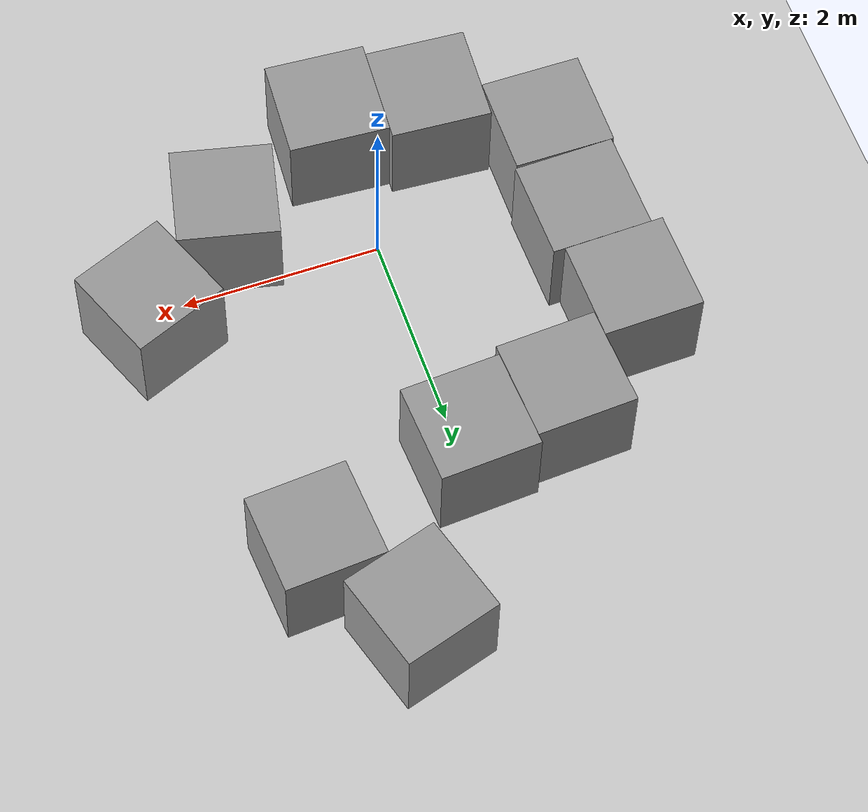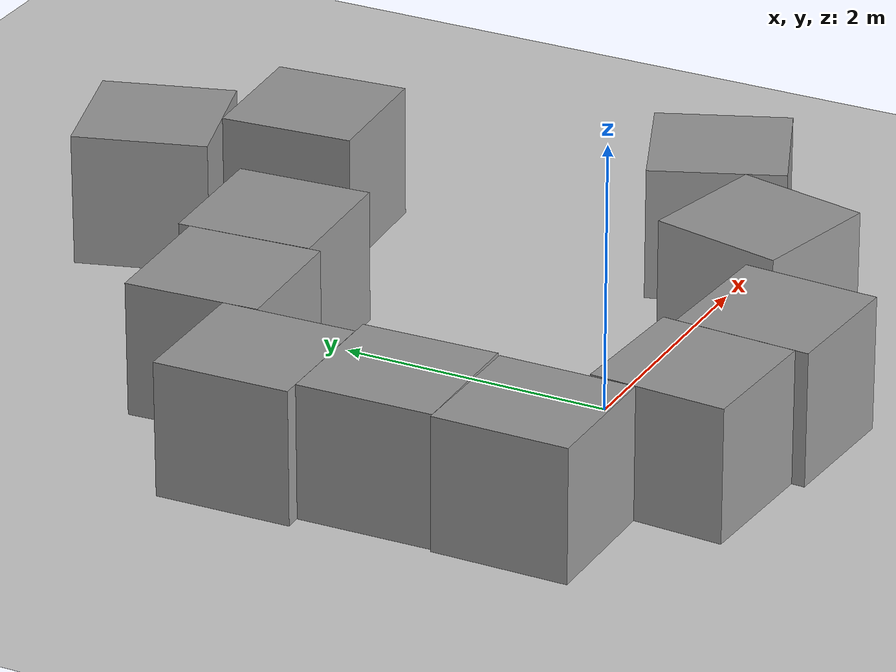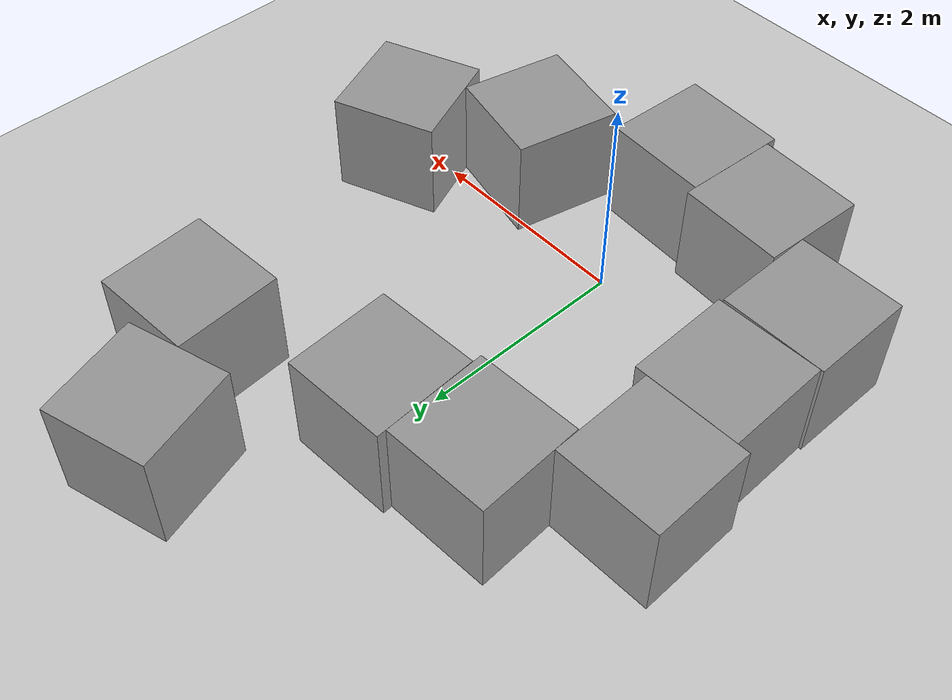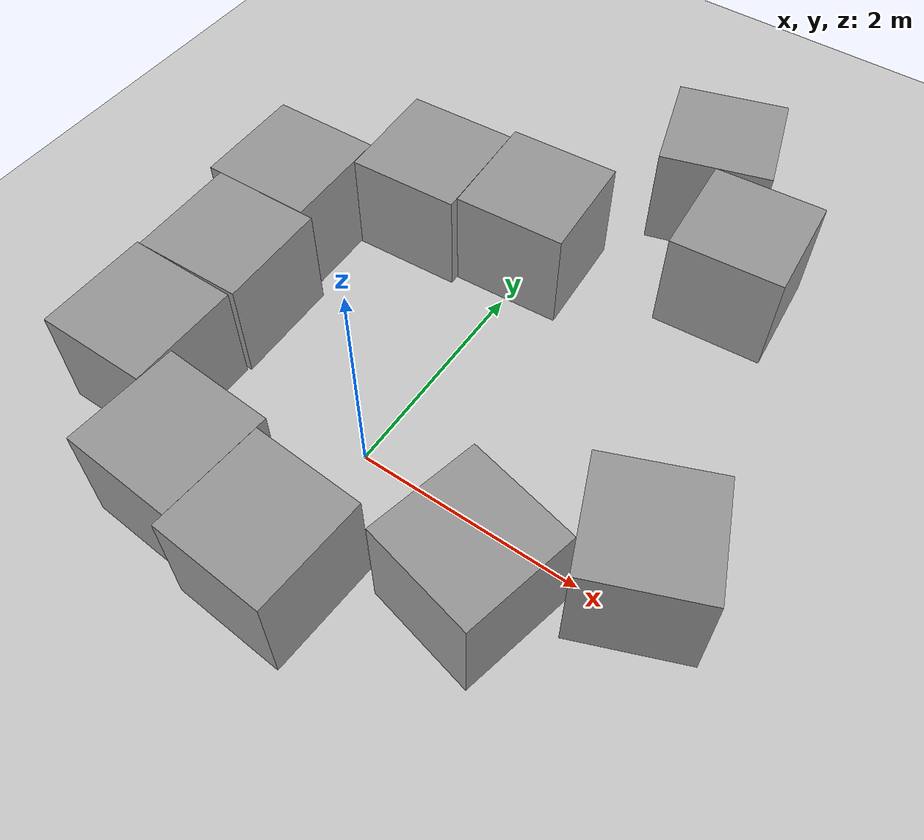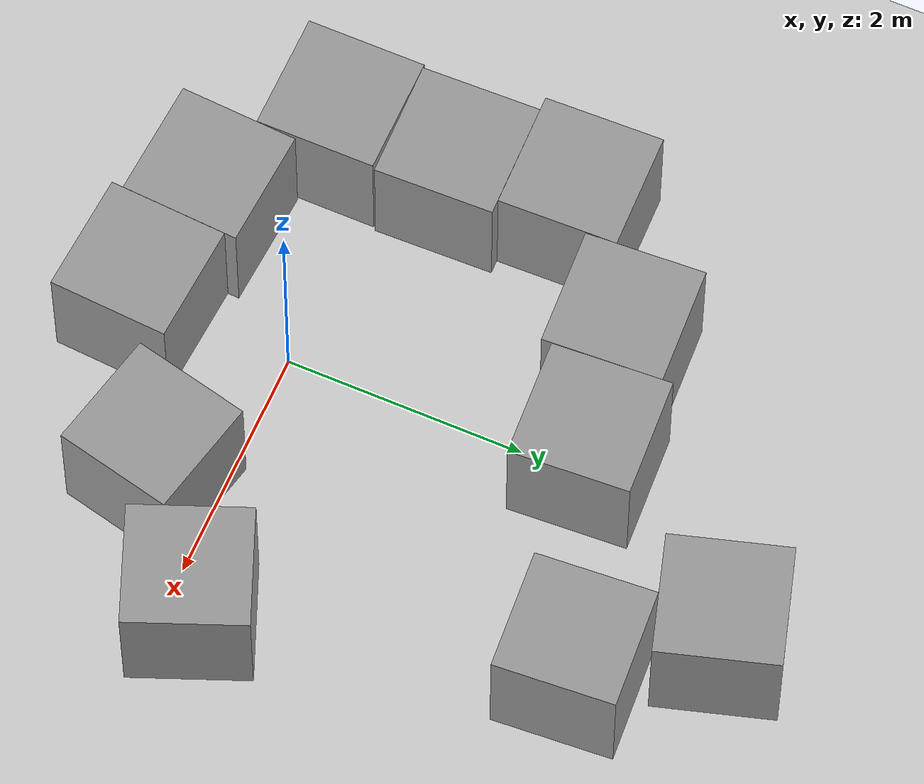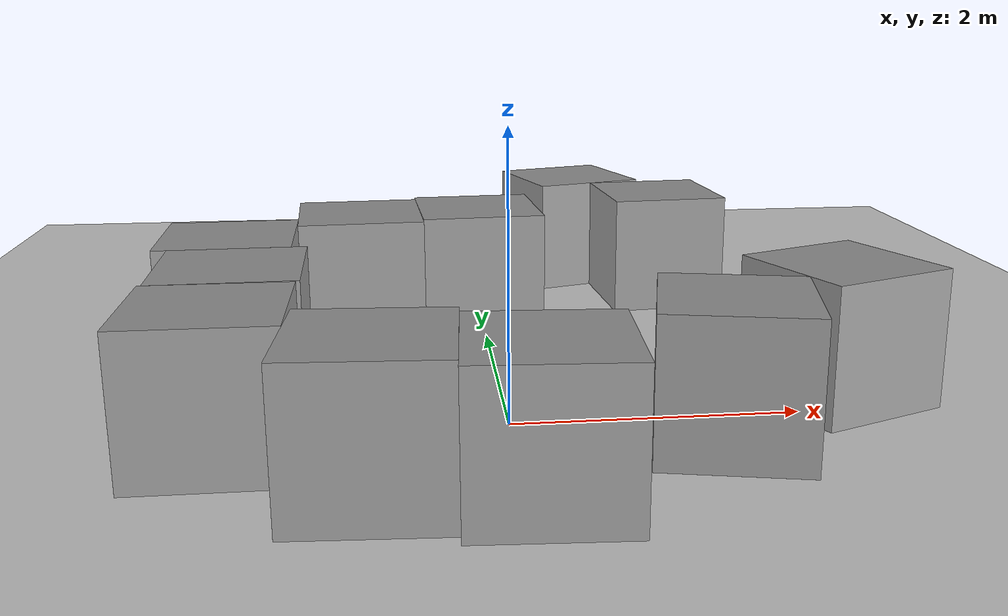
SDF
<sdf version="1.7">
 <world name="default">
  <light name="sun" type="directional">
   <pose>0 0 10 0 -0 0</pose>
   <diffuse>0.8 0.8 0.8 1</diffuse>
   <specular>0.2 0.2 0.2 1</specular>
   <attenuation>
    <range>1000</range>
    <constant>0.9</constant>
    <linear>0.01</linear>
    <quadratic>0.001</quadratic>
   </attenuation>
   <direction>-0.5 0.1 -0.9</direction>
  </light>
  <model name="ground_plane">
   <static>1</static>
   <link name="link">
    <collision name="collision">
     <geometry><plane><normal>0 0 1</normal><size>100 100</size></plane></geometry>
     <surface><friction><ode><mu>100</mu><mu2>50</mu2></ode></friction></surface>
    </collision>
    <visual name="visual">
     <cast_shadows>0</cast_shadows>
     <geometry><plane><normal>0 0 1</normal><size>100 100</size></plane></geometry>
     <material>
      <script><uri>file://media/materials/scripts/gazebo.material</uri><name>Gazebo/Grey</name></script>
     </material>
    </visual>
   </link>
  </model>
  <gravity>0 0 -20</gravity>
  <magnetic_field>6e-06 2.3e-05 -4.2e-05</magnetic_field>
  <atmosphere type="adiabatic"/>
  <physics type="ode">
   <max_step_size>0.001</max_step_size>
   <real_time_factor>1</real_time_factor>
   <real_time_update_rate>1000</real_time_update_rate>
  </physics>
  <scene><ambient>0.4 0.4 0.4 1</ambient><background>0.7 0.7 0.7 1</background><shadows>1</shadows></scene>
  <spherical_coordinates>
   <surface_model>EARTH_WGS84</surface_model>
   <latitude_deg>0</latitude_deg>
   <longitude_deg>0</longitude_deg>
   <elevation>0</elevation>
   <heading_deg>0</heading_deg>
  </spherical_coordinates>
  <model name="unit_box">
   <pose>2.364 0.240453 0.499991 -0 1.7e-05 0.383822</pose>
   <link name="link">
    <inertial>
     <mass>1</mass>
     <inertia>
      <ixx>0.166667</ixx>
      <ixy>0</ixy>
      <ixz>0</ixz>
      <iyy>0.166667</iyy>
      <iyz>0</iyz>
      <izz>0.166667</izz>
     </inertia>
    </inertial>
    <collision name="collision"><geometry><box><size>1 1 1</size></box></geometry></collision>
    <visual name="visual">
     <geometry><box><size>1 1 1</size></box></geometry>
     <material>
      <script><name>Gazebo/Grey</name><uri>file://media/materials/scripts/gazebo.material</uri></script>
     </material>
    </visual>
   </link>
  </model>
  <model name="unit_box_0">
   <pose>-0.885028 -1.0663 0.5 0 0 -0.060543</pose>
   <link name="link">
    <inertial>
     <mass>1</mass>
     <inertia>
      <ixx>0.166667</ixx>
      <ixy>0</ixy>
      <ixz>0</ixz>
      <iyy>0.166667</iyy>
      <iyz>0</iyz>
      <izz>0.166667</izz>
     </inertia>
    </inertial>
    <collision name="collision"><geometry><box><size>1 1 1</size></box></geometry></collision>
    <visual name="visual">
     <geometry><box><size>1 1 1</size></box></geometry>
     <material>
      <script><name>Gazebo/Grey</name><uri>file://media/materials/scripts/gazebo.material</uri></script>
     </material>
    </visual>
   </link>
  </model>
  <model name="unit_box_1">
   <pose>-1.87617 -0.378322 0.5 0 0 -0.002113</pose>
   <link name="link">
    <inertial>
     <mass>1</mass>
     <inertia>
      <ixx>0.166667</ixx>
      <ixy>0</ixy>
      <ixz>0</ixz>
      <iyy>0.166667</iyy>
      <iyz>0</iyz>
      <izz>0.166667</izz>
     </inertia>
    </inertial>
    <collision name="collision"><geometry><box><size>1 1 1</size></box></geometry></collision>
    <visual name="visual">
     <geometry><box><size>1 1 1</size></box></geometry>
     <material>
      <script><name>Gazebo/Grey</name><uri>file://media/materials/scripts/gazebo.material</uri></script>
     </material>
    </visual>
   </link>
  </model>
  <model name="unit_box_2">
   <pose>-1.86097 0.63409 0.5 0 -0 0.023085</pose>
   <link name="link">
    <inertial>
     <mass>1</mass>
     <inertia>
      <ixx>0.166667</ixx>
      <ixy>0</ixy>
      <ixz>0</ixz>
      <iyy>0.166667</iyy>
      <iyz>0</iyz>
      <izz>0.166667</izz>
     </inertia>
    </inertial>
    <collision name="collision"><geometry><box><size>1 1 1</size></box></geometry></collision>
    <visual name="visual">
     <geometry><box><size>1 1 1</size></box></geometry>
     <material>
      <script><name>Gazebo/Grey</name><uri>file://media/materials/scripts/gazebo.material</uri></script>
     </material>
    </visual>
   </link>
  </model>
  <model name="unit_box_3">
   <pose>0.107928 -1.22408 0.5 0 -0 -0.060858</pose>
   <link name="link">
    <inertial>
     <mass>1</mass>
     <inertia>
      <ixx>0.166667</ixx>
      <ixy>0</ixy>
      <ixz>0</ixz>
      <iyy>0.166667</iyy>
      <iyz>0</iyz>
      <izz>0.166667</izz>
     </inertia>
    </inertial>
    <collision name="collision"><geometry><box><size>1 1 1</size></box></geometry></collision>
    <visual name="visual">
     <geometry><box><size>1 1 1</size></box></geometry>
     <material>
      <script><name>Gazebo/Grey</name><uri>file://media/materials/scripts/gazebo.material</uri></script>
     </material>
    </visual>
   </link>
  </model>
  <model name="unit_box_4">
   <pose>1.37914 -0.514715 0.5 0 0 -0.223875</pose>
   <link name="link">
    <inertial>
     <mass>1</mass>
     <inertia>
      <ixx>0.166667</ixx>
      <ixy>0</ixy>
      <ixz>0</ixz>
      <iyy>0.166667</iyy>
      <iyz>0</iyz>
      <izz>0.166667</izz>
     </inertia>
    </inertial>
    <collision name="collision"><geometry><box><size>1 1 1</size></box></geometry></collision>
    <visual name="visual">
     <geometry><box><size>1 1 1</size></box></geometry>
     <material>
      <script><name>Gazebo/Grey</name><uri>file://media/materials/scripts/gazebo.material</uri></script>
     </material>
    </visual>
   </link>
  </model>
  <model name="unit_box_5">
   <pose>-0.030986 2.55487 0.499991 0 1.7e-05 0.059076</pose>
   <link name="link">
    <inertial>
     <mass>1</mass>
     <inertia>
      <ixx>0.166667</ixx>
      <ixy>0</ixy>
      <ixz>0</ixz>
      <iyy>0.166667</iyy>
      <iyz>0</iyz>
      <izz>0.166667</izz>
     </inertia>
    </inertial>
    <collision name="collision"><geometry><box><size>1 1 1</size></box></geometry></collision>
    <visual name="visual">
     <geometry><box><size>1 1 1</size></box></geometry>
     <material>
      <script><name>Gazebo/Grey</name><uri>file://media/materials/scripts/gazebo.material</uri></script>
     </material>
    </visual>
   </link>
  </model>
  <model name="unit_box_6">
   <pose>0.988436 4.09509 0.5 0 -0 0.292934</pose>
   <link name="link">
    <inertial>
     <mass>1</mass>
     <inertia>
      <ixx>0.166667</ixx>
      <ixy>0</ixy>
      <ixz>0</ixz>
      <iyy>0.166667</iyy>
      <iyz>0</iyz>
      <izz>0.166667</izz>
     </inertia>
    </inertial>
    <collision name="collision"><geometry><box><size>1 1 1</size></box></geometry></collision>
    <visual name="visual">
     <geometry><box><size>1 1 1</size></box></geometry>
     <material>
      <script><name>Gazebo/Grey</name><uri>file://media/materials/scripts/gazebo.material</uri></script>
     </material>
    </visual>
   </link>
  </model>
  <model name="unit_box_7">
   <pose>1.67002 3.1535 0.5 0 -0 0.071052</pose>
   <link name="link">
    <inertial>
     <mass>1</mass>
     <inertia>
      <ixx>0.166667</ixx>
      <ixy>0</ixy>
      <ixz>0</ixz>
      <iyy>0.166667</iyy>
      <iyz>0</iyz>
      <izz>0.166667</izz>
     </inertia>
    </inertial>
    <collision name="collision"><geometry><box><size>1 1 1</size></box></geometry></collision>
    <visual name="visual">
     <geometry><box><size>1 1 1</size></box></geometry>
     <material>
      <script><name>Gazebo/Grey</name><uri>file://media/materials/scripts/gazebo.material</uri></script>
     </material>
    </visual>
   </link>
  </model>
  <model name="unit_box_8">
   <pose>-1.02666 2.41161 0.499991 0 -1.7e-05 0.054309</pose>
   <link name="link">
    <inertial>
     <mass>1</mass>
     <inertia>
      <ixx>0.166667</ixx>
      <ixy>0</ixy>
      <ixz>0</ixz>
      <iyy>0.166667</iyy>
      <iyz>0</iyz>
      <izz>0.166667</izz>
     </inertia>
    </inertial>
    <collision name="collision"><geometry><box><size>1 1 1</size></box></geometry></collision>
    <visual name="visual">
     <geometry><box><size>1 1 1</size></box></geometry>
     <material>
      <script><name>Gazebo/Grey</name><uri>file://media/materials/scripts/gazebo.material</uri></script>
     </material>
    </visual>
   </link>
  </model>
  <model name="unit_box_9">
   <pose>-2.00019 1.63189 0.499991 0 1.7e-05 0.025026</pose>
   <link name="link">
    <inertial>
     <mass>1</mass>
     <inertia>
      <ixx>0.166667</ixx>
      <ixy>0</ixy>
      <ixz>0</ixz>
      <iyy>0.166667</iyy>
      <iyz>0</iyz>
      <izz>0.166667</izz>
     </inertia>
    </inertial>
    <collision name="collision"><geometry><box><size>1 1 1</size></box></geometry></collision>
    <visual name="visual">
     <geometry><box><size>1 1 1</size></box></geometry>
     <material>
      <script><name>Gazebo/Grey</name><uri>file://media/materials/scripts/gazebo.material</uri></script>
     </material>
    </visual>
   </link>
  </model>
 </world>
</sdf>
